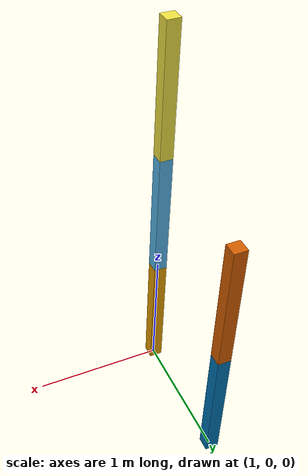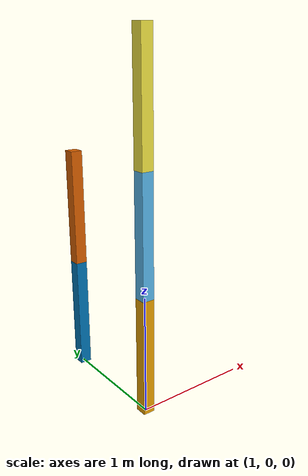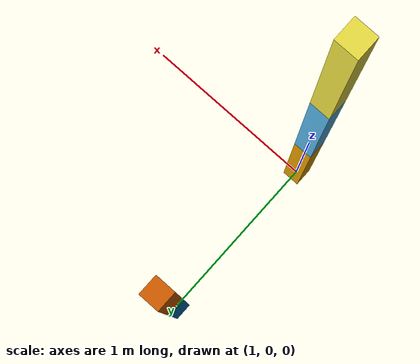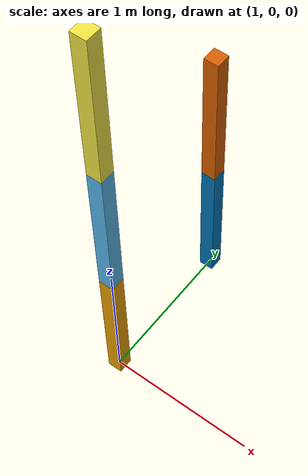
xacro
<robot name="simple"
    xmlns:xacro="http://www.ros.org/wiki/xacro">
    <xacro:include filename="$(find week04_description)/urdf/simple_robot.xacro"/>

    <xacro:myrobot robot_name="r1"/>
    <xacro:myrobot robot_name="r2"/>
    <xacro:myrobot robot_name="r3"/>

    <link name="world"/>
    <joint name="r1" type="fixed">
        <origin xyz="1 0 0" rpy="0 0 0"/>
        <parent link="world"/>
        <child link="r1_world"/>
    </joint>
    <joint name="r2" type="fixed">
        <origin xyz="0 0 0" rpy="0 0 0"/>
        <parent link="r1_tool"/>
        <child link="r2_world"/>
    </joint>
    <joint name="r3" type="fixed">
        <origin xyz="1 1 0" rpy="0 0 0"/>
        <parent link="world"/>
        <child link="r3_world"/>
    </joint>

</robot>

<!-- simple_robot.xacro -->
<robot name="simple"  xmlns:xacro="http://www.ros.org/wiki/xacro">

    <xacro:include filename="$(find week04_description)/urdf/mylink-v2.xacro"/>
    <xacro:macro name="myrobot" params="robot_name">
        <xacro:mylink link_name="${robot_name}_world"/>
        <xacro:mylink link_name="${robot_name}_tool"/>

        <joint name="${robot_name}_q1" type="revolute">
            <origin xyz="0 0 1" rpy=" 0 0 0"/>
            <parent link="${robot_name}_world"/>
            <child link="${robot_name}_tool"/>

            <axis xyz="0 1 0"/>
            <limit lower="-1" upper="1" effort="1" velocity="1"/>
        </joint>
    </xacro:macro>
</robot>

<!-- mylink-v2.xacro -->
<robot name="mylink" xmlns:xacro="http://www.ros.org/wiki/xacro">

    <xacro:macro name="mylink" params="link_name">
        <link name="${link_name}">
            <visual>
                <origin xyz="0 0 0.5" rpy="0 0 0"/>
                <geometry>
                    <box size="0.1 0.1 1"/>
                </geometry>
            </visual>
        </link>
    </xacro:macro>
<!-- instead of repeating same code for different links, we can reuse the code like above -->

</robot>
